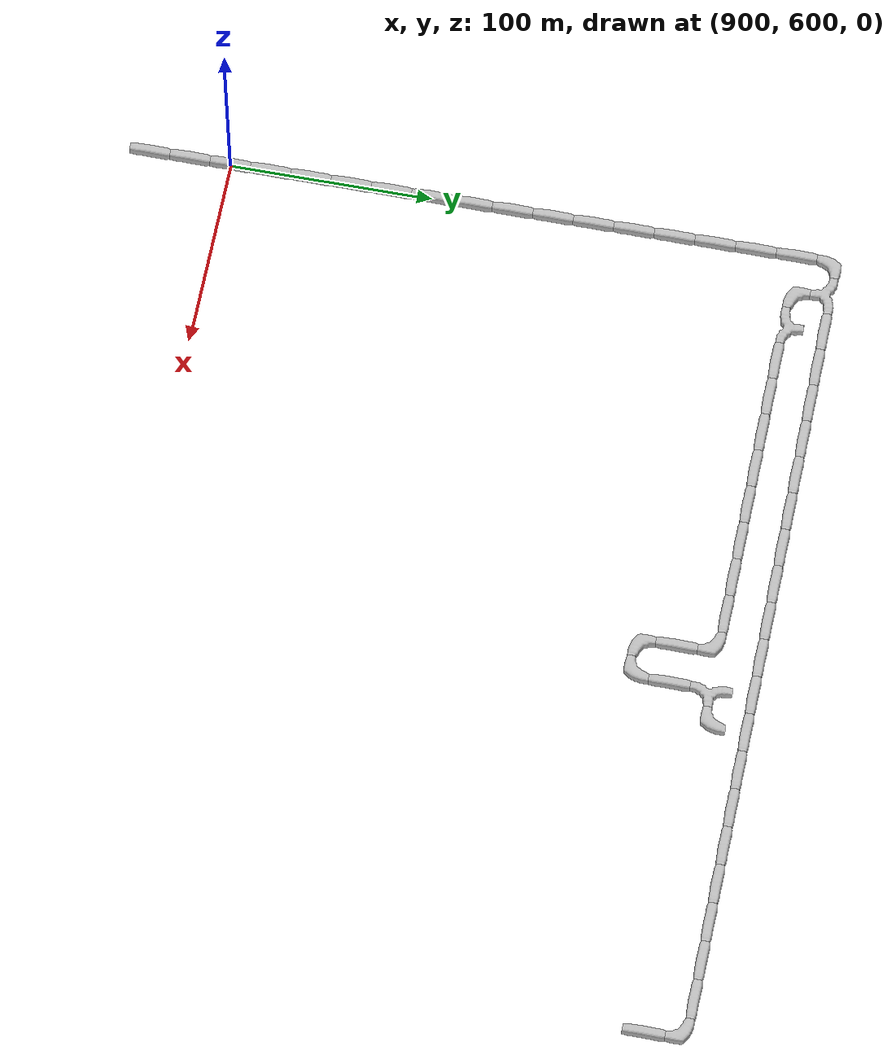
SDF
<sdf version="1.6">
 <world name="cave_32000">
  <include>
   <static>true</static>
   <name>cave_45_28</name>
   <pose>900 560 0 0 0 0.0</pose>
   <uri>model://cave_straight_20m</uri>
  </include>
  <include>
   <static>true</static>
   <name>cave_45_29</name>
   <pose>900 580 0 0 0 0.0</pose>
   <uri>model://cave_straight_20m</uri>
  </include>
  <include>
   <static>true</static>
   <name>cave_45_30</name>
   <pose>900 600 0 0 0 0.0</pose>
   <uri>model://cave_straight_20m</uri>
  </include>
  <include>
   <static>true</static>
   <name>cave_45_31</name>
   <pose>900 620 0 0 0 0.0</pose>
   <uri>model://cave_straight_20m</uri>
  </include>
  <include>
   <static>true</static>
   <name>cave_45_32</name>
   <pose>900 640 0 0 0 0.0</pose>
   <uri>model://cave_straight_20m</uri>
  </include>
  <include>
   <static>true</static>
   <name>cave_45_33</name>
   <pose>900 660 0 0 0 0.0</pose>
   <uri>model://cave_straight_20m</uri>
  </include>
  <include>
   <static>true</static>
   <name>cave_45_34</name>
   <pose>900 680 0 0 0 0.0</pose>
   <uri>model://cave_straight_20m</uri>
  </include>
  <include>
   <static>true</static>
   <name>cave_45_35</name>
   <pose>900 700 0 0 0 0.0</pose>
   <uri>model://cave_straight_20m</uri>
  </include>
  <include>
   <static>true</static>
   <name>cave_45_36</name>
   <pose>900 720 0 0 0 0.0</pose>
   <uri>model://cave_straight_20m</uri>
  </include>
  <include>
   <static>true</static>
   <name>cave_45_37</name>
   <pose>900 740 0 0 0 0.0</pose>
   <uri>model://cave_straight_20m</uri>
  </include>
  <include>
   <static>true</static>
   <name>cave_45_38</name>
   <pose>900 760 0 0 0 0.0</pose>
   <uri>model://cave_straight_20m</uri>
  </include>
  <include>
   <static>true</static>
   <name>cave_45_39</name>
   <pose>900 780 0 0 0 0.0</pose>
   <uri>model://cave_straight_20m</uri>
  </include>
  <include>
   <static>true</static>
   <name>cave_45_40</name>
   <pose>900 800 0 0 0 0.0</pose>
   <uri>model://cave_straight_20m</uri>
  </include>
  <include>
   <static>true</static>
   <name>cave_45_41</name>
   <pose>900 820 0 0 0 0.0</pose>
   <uri>model://cave_straight_20m</uri>
  </include>
  <include>
   <static>true</static>
   <name>cave_45_42</name>
   <pose>900 840 0 0 0 0.0</pose>
   <uri>model://cave_straight_20m</uri>
  </include>
  <include>
   <static>true</static>
   <name>cave_45_43</name>
   <pose>900 860 0 0 0 0.0</pose>
   <uri>model://cave_straight_20m</uri>
  </include>
  <include>
   <static>true</static>
   <name>cave_45_44</name>
   <pose>900 880 0 0 0 0.0</pose>
   <uri>model://cave_straight_20m</uri>
  </include>
  <include>
   <static>true</static>
   <name>cave_45_45</name>
   <pose>900 900 0 0 0 -1.5707963267948966</pose>
   <uri>model://cave_L_20m</uri>
  </include>
  <include>
   <static>true</static>
   <name>cave_46_45</name>
   <pose>920 900 0 0 0 3.141592653589793</pose>
   <uri>model://cave_3way_20m</uri>
  </include>
  <include>
   <static>true</static>
   <name>cave_47_45</name>
   <pose>940 900 0 0 0 1.5707963267948966</pose>
   <uri>model://cave_straight_20m</uri>
  </include>
  <include>
   <static>true</static>
   <name>cave_48_45</name>
   <pose>960 900 0 0 0 1.5707963267948966</pose>
   <uri>model://cave_straight_20m</uri>
  </include>
  <include>
   <static>true</static>
   <name>cave_49_45</name>
   <pose>980 900 0 0 0 1.5707963267948966</pose>
   <uri>model://cave_straight_20m</uri>
  </include>
  <include>
   <static>true</static>
   <name>cave_50_45</name>
   <pose>1000 900 0 0 0 1.5707963267948966</pose>
   <uri>model://cave_straight_20m</uri>
  </include>
  <include>
   <static>true</static>
   <name>cave_51_45</name>
   <pose>1020 900 0 0 0 1.5707963267948966</pose>
   <uri>model://cave_straight_20m</uri>
  </include>
  <include>
   <static>true</static>
   <name>cave_52_45</name>
   <pose>1040 900 0 0 0 1.5707963267948966</pose>
   <uri>model://cave_straight_20m</uri>
  </include>
  <include>
   <static>true</static>
   <name>cave_53_45</name>
   <pose>1060 900 0 0 0 1.5707963267948966</pose>
   <uri>model://cave_straight_20m</uri>
  </include>
  <include>
   <static>true</static>
   <name>cave_54_45</name>
   <pose>1080 900 0 0 0 1.5707963267948966</pose>
   <uri>model://cave_straight_20m</uri>
  </include>
  <include>
   <static>true</static>
   <name>cave_55_45</name>
   <pose>1100 900 0 0 0 1.5707963267948966</pose>
   <uri>model://cave_straight_20m</uri>
  </include>
  <include>
   <static>true</static>
   <name>cave_56_45</name>
   <pose>1120 900 0 0 0 1.5707963267948966</pose>
   <uri>model://cave_straight_20m</uri>
  </include>
  <include>
   <static>true</static>
   <name>cave_57_45</name>
   <pose>1140 900 0 0 0 1.5707963267948966</pose>
   <uri>model://cave_straight_20m</uri>
  </include>
  <include>
   <static>true</static>
   <name>cave_58_45</name>
   <pose>1160 900 0 0 0 1.5707963267948966</pose>
   <uri>model://cave_straight_20m</uri>
  </include>
  <include>
   <static>true</static>
   <name>cave_59_45</name>
   <pose>1180 900 0 0 0 1.5707963267948966</pose>
   <uri>model://cave_straight_20m</uri>
  </include>
  <include>
   <static>true</static>
   <name>cave_60_45</name>
   <pose>1200 900 0 0 0 1.5707963267948966</pose>
   <uri>model://cave_straight_20m</uri>
  </include>
  <include>
   <static>true</static>
   <name>cave_61_45</name>
   <pose>1220 900 0 0 0 1.5707963267948966</pose>
   <uri>model://cave_straight_20m</uri>
  </include>
  <include>
   <static>true</static>
   <name>cave_62_45</name>
   <pose>1240 900 0 0 0 1.5707963267948966</pose>
   <uri>model://cave_straight_20m</uri>
  </include>
  <include>
   <static>true</static>
   <name>cave_63_45</name>
   <pose>1260 900 0 0 0 1.5707963267948966</pose>
   <uri>model://cave_straight_20m</uri>
  </include>
  <include>
   <static>true</static>
   <name>cave_64_45</name>
   <pose>1280 900 0 0 0 1.5707963267948966</pose>
   <uri>model://cave_straight_20m</uri>
  </include>
  <include>
   <static>true</static>
   <name>cave_65_45</name>
   <pose>1300 900 0 0 0 1.5707963267948966</pose>
   <uri>model://cave_straight_20m</uri>
  </include>
  <include>
   <static>true</static>
   <name>cave_66_45</name>
   <pose>1320 900 0 0 0 3.141592653589793</pose>
   <uri>model://cave_L_20m</uri>
  </include>
  <include>
   <static>true</static>
   <name>cave_66_44</name>
   <pose>1320 880 0 0 0 0.0</pose>
   <uri>model://cave_straight_20m</uri>
  </include>
  <include>
   <static>true</static>
   <name>cave_46_44</name>
   <pose>920 880 0 0 0 0.0</pose>
   <uri>model://cave_L_20m</uri>
  </include>
  <include>
   <static>true</static>
   <name>cave_47_44</name>
   <pose>940 880 0 0 0 0.0</pose>
   <uri>model://cave_3way_20m</uri>
  </include>
  <include>
   <static>true</static>
   <name>cave_48_44</name>
   <pose>960 880 0 0 0 1.5707963267948966</pose>
   <uri>model://cave_straight_20m</uri>
  </include>
  <include>
   <static>true</static>
   <name>cave_49_44</name>
   <pose>980 880 0 0 0 1.5707963267948966</pose>
   <uri>model://cave_straight_20m</uri>
  </include>
  <include>
   <static>true</static>
   <name>cave_50_44</name>
   <pose>1000 880 0 0 0 1.5707963267948966</pose>
   <uri>model://cave_straight_20m</uri>
  </include>
  <include>
   <static>true</static>
   <name>cave_51_44</name>
   <pose>1020 880 0 0 0 1.5707963267948966</pose>
   <uri>model://cave_straight_20m</uri>
  </include>
  <include>
   <static>true</static>
   <name>cave_52_44</name>
   <pose>1040 880 0 0 0 1.5707963267948966</pose>
   <uri>model://cave_straight_20m</uri>
  </include>
  <include>
   <static>true</static>
   <name>cave_53_44</name>
   <pose>1060 880 0 0 0 1.5707963267948966</pose>
   <uri>model://cave_straight_20m</uri>
  </include>
  <include>
   <static>true</static>
   <name>cave_54_44</name>
   <pose>1080 880 0 0 0 1.5707963267948966</pose>
   <uri>model://cave_straight_20m</uri>
  </include>
  <include>
   <static>true</static>
   <name>cave_55_44</name>
   <pose>1100 880 0 0 0 1.5707963267948966</pose>
   <uri>model://cave_straight_20m</uri>
  </include>
  <include>
   <static>true</static>
   <name>cave_56_44</name>
   <pose>1120 880 0 0 0 3.141592653589793</pose>
   <uri>model://cave_L_20m</uri>
  </include>
  <include>
   <static>true</static>
   <name>cave_56_43</name>
   <pose>1120 860 0 0 0 0.0</pose>
   <uri>model://cave_straight_20m</uri>
  </include>
  <include>
   <static>true</static>
   <name>cave_56_42</name>
   <pose>1120 840 0 0 0 0.0</pose>
   <uri>model://cave_L_20m</uri>
  </include>
  <include>
   <static>true</static>
   <name>cave_57_42</name>
   <pose>1140 840 0 0 0 1.5707963267948966</pose>
   <uri>model://cave_L_20m</uri>
  </include>
  <include>
   <static>true</static>
   <name>cave_57_43</name>
   <pose>1140 860 0 0 0 0.0</pose>
   <uri>model://cave_straight_20m</uri>
  </include>
  <include>
   <static>true</static>
   <name>cave_57_44</name>
   <pose>1140 880 0 0 0 -1.5707963267948966</pose>
   <uri>model://cave_3way_20m</uri>
  </include>
  <include>
   <static>true</static>
   <name>cave_58_44</name>
   <pose>1160 880 0 0 0 1.5707963267948966</pose>
   <uri>model://cave_L_20m</uri>
  </include>
 </world>
</sdf>
